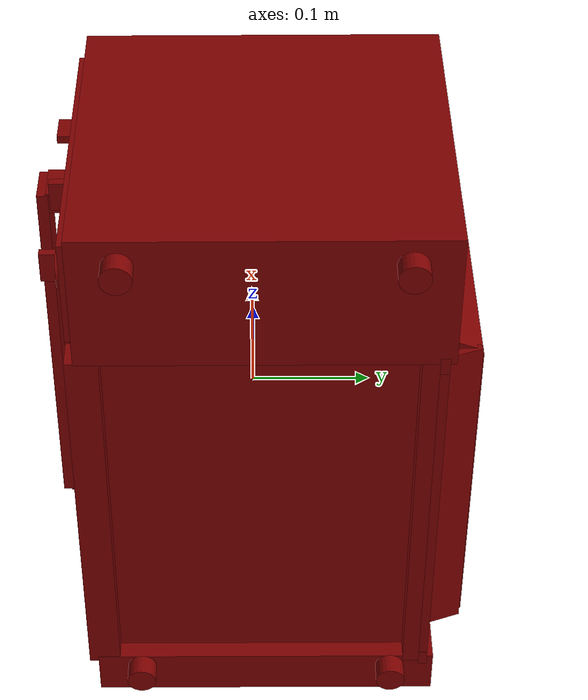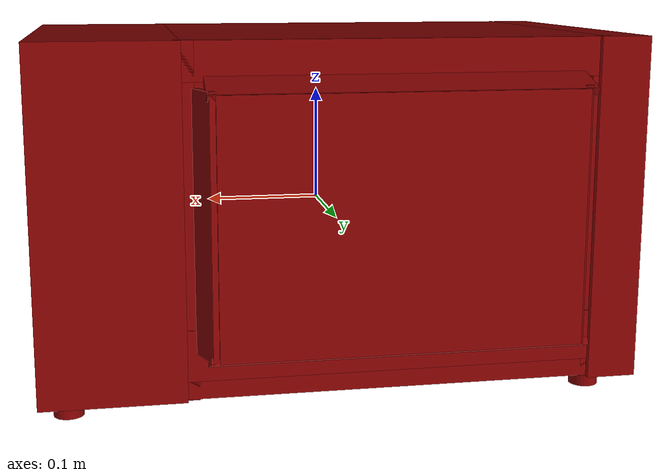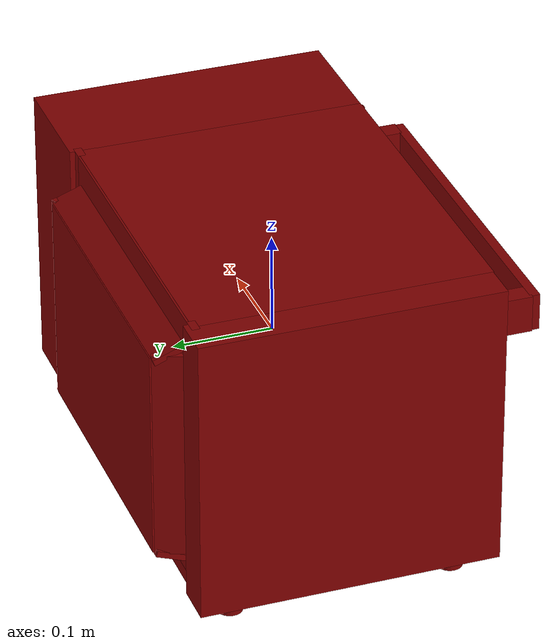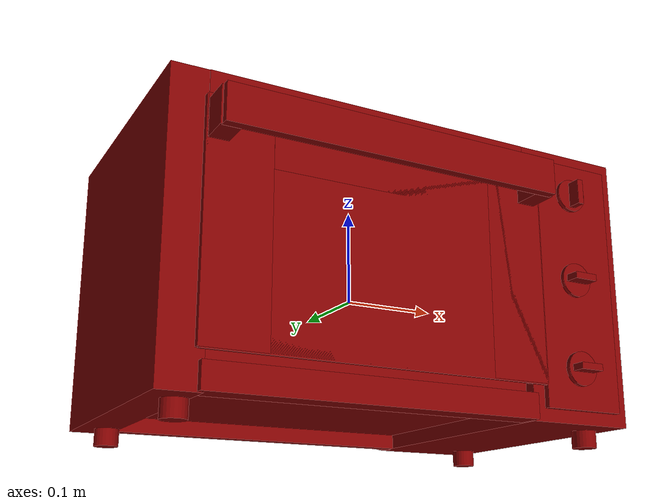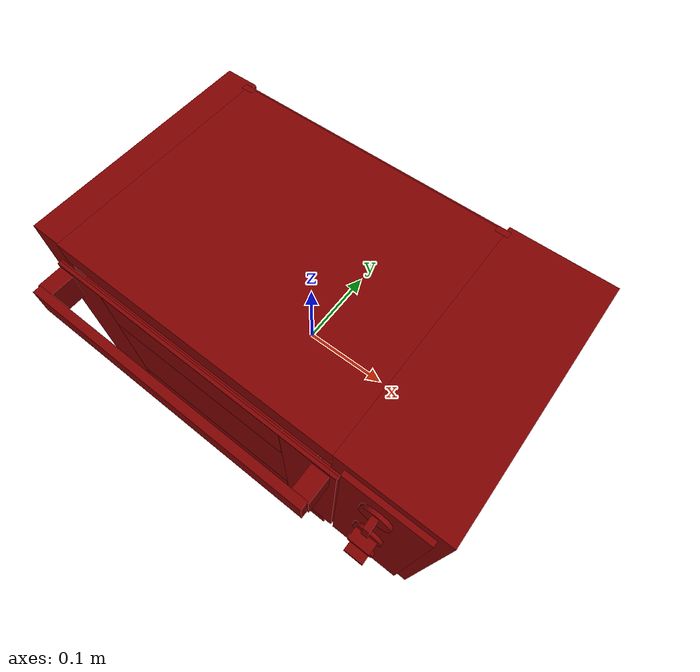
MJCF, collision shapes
<?xml version='1.0' encoding='UTF-8'?>
<mujoco model="model">
  <option timestep="0.002" gravity="0.0 0.0 -9.81"/>
  <compiler angle="radian"/>
  <asset>
    <mesh file="visuals/door.obj" name="door_vis"/>
    <mesh file="visuals/knob_function.obj" name="knob_function_vis"/>
    <mesh file="visuals/knob_temp.obj" name="knob_temp_vis"/>
    <mesh file="visuals/knob_time.obj" name="knob_time_vis"/>
    <mesh file="visuals/Body001.obj" name="Body001_vis"/>
    <mesh file="visuals/tray0.obj" name="tray0_vis"/>
    <mesh file="visuals/window.obj" name="window_vis"/>
    <texture file="visuals/T_BC001.png" name="Body001_material" type="2d"/>
    <material name="Body001_material" rgba="1 1 1 1.0" texture="Body001_material" shininess="0.4472135901451111" specular="0.5"/>
    <texture file="visuals/T_BC001.png" name="door_material" type="2d"/>
    <material name="door_material" rgba="1 1 1 1.0" texture="door_material" shininess="0.4472135901451111" specular="0.5"/>
    <texture file="visuals/T_BC001.png" name="window_material" type="2d"/>
    <material name="window_material" rgba="1 1 1 0.800000011920929" texture="window_material" shininess="0.4472135901451111" specular="0.3103448502657381"/>
    <texture file="visuals/T_BC001.png" name="knob_function_material" type="2d"/>
    <material name="knob_function_material" rgba="1 1 1 1.0" texture="knob_function_material" shininess="0.4472135901451111" specular="0.3103448502657381"/>
    <texture file="visuals/T_BC001.png" name="knob_temp_material" type="2d"/>
    <material name="knob_temp_material" rgba="1 1 1 1.0" texture="knob_temp_material" shininess="0.4472135901451111" specular="0.3103448502657381"/>
    <texture file="visuals/T_BC001.png" name="knob_time_material" type="2d"/>
    <material name="knob_time_material" rgba="1 1 1 1.0" texture="knob_time_material" shininess="0.4472135901451111" specular="0.3103448502657381"/>
    <texture file="visuals/T_BC001.png" name="tray0_material" type="2d"/>
    <material name="tray0_material" rgba="1 1 1 1.0" texture="tray0_material" shininess="0.4472135901451111" specular="5"/>
  </asset>
  <default>
    <default class="visual">
      <geom conaffinity="0" contype="0" group="1" type="mesh"/>
    </default>
    <default class="collision">
      <geom group="0" rgba="0.5 0 0 0.5"/>
    </default>
    <default class="spawn">
      <geom group="0" rgba="1 1 1 0.5" contype="0" conaffinity="0"/>
      <site group="0" rgba="1 1 1 0.5"/>
    </default>
    <default class="region">
      <geom group="1" conaffinity="0" contype="0" rgba="0 1 0 0"/>
    </default>
  </default>
  <worldbody>
    <body>
      <body name="object">
        <geom mesh="Body001_vis" type="mesh" solimp="0.998 0.998 0.001" solref="0.001 1" friction="0.95 0.3 0.1" class="visual" material="Body001_material"/>
        <geom class="collision" type="box" pos="-0.2291344553232193 0.01026891078799963 0.009272522293031216" size="0.02095920220017433 0.14795072376728058 0.1446588784456253" quat="1.0 0.0 0.0 0.0"/>
        <geom class="collision" type="box" pos="0.19071297347545624 0.009946533478796482 0.009272522293031216" size="0.059381961822509766 0.14827591180801392 0.144661545753479" quat="1.0 0.0 0.0 0.0"/>
        <geom class="collision" type="box" pos="-0.04090869426727295 0.1805724799633026 0.009302927181124687" size="0.1486060470342636 0.0035272836685180664 0.10513849556446075" quat="1.0 0.0 0.0 0.0"/>
        <geom class="collision" type="box" pos="-0.04090869426727295 0.006192016415297985 0.13888375461101532" size="0.17270509898662567 0.14469483494758606 0.015050338581204414" quat="1.0 0.0 0.0 0.0"/>
        <geom class="collision" type="box" pos="-0.04090869426727295 0.013177791610360146 -0.09805627912282944" size="0.17270509898662567 0.14053411781787872 0.021454239264130592" quat="1.0 0.0 0.0 0.0"/>
        <geom class="collision" type="box" pos="-0.1965753734111786 0.02429427206516266 -0.005125303752720356" size="0.013140195049345493 0.0921148881316185 0.00394660048186779" quat="1.0 0.0 0.0 0.0"/>
        <geom class="collision" type="box" pos="0.12132398039102554 0.02429427206516266 -0.005125303752720356" size="0.013140195049345493 0.09211491793394089 0.00394660048186779" quat="1.0 0.0 0.0 0.0"/>
        <geom class="collision" type="box" pos="-0.04090869426727295 -0.13197186589241028 -0.12177293747663498" size="0.17270301282405853 0.01345696859061718 0.012961048632860184" quat="1.0 0.0 0.0 0.0"/>
        <geom class="collision" type="box" pos="-0.04090869426727295 0.138325497508049 -0.12217225879430771" size="0.1727031022310257 0.006978643126785755 0.013360378332436085" quat="1.0 0.0 0.0 0.0"/>
        <geom class="collision" type="cylinder" pos="-0.22020751237869263 -0.09926024079322815 -0.14432883262634277" size="0.012536659836769104 0.00904157292097807" quat="1.0 0.0 0.0 0.0"/>
        <geom class="collision" type="cylinder" pos="0.22734780609607697 -0.09926024079322815 -0.14432883262634277" size="0.012536659836769104 0.00904157292097807" quat="1.0 0.0 0.0 0.0"/>
        <geom class="collision" type="cylinder" pos="-0.22020751237869263 0.11993732303380966 -0.14432883262634277" size="0.012536659836769104 0.00904157292097807" quat="1.0 0.0 0.0 0.0"/>
        <geom class="collision" type="cylinder" pos="0.22734780609607697 0.11993732303380966 -0.14432883262634277" size="0.012536659836769104 0.00904157292097807" quat="1.0 0.0 0.0 0.0"/>
        <geom class="collision" type="box" pos="-0.04090869426727295 0.14905086159706116 0.13775868713855743" size="0.17270508408546448 0.003952898550778627 0.015989204868674278" quat="1.0 0.0 0.0 0.0"/>
        <geom class="collision" type="box" pos="0.12904879450798035 0.14905086159706116 0.009272513911128044" size="0.007620235905051231 0.0039529139176011086 0.14466336369514465" quat="1.0 0.0 0.0 0.0"/>
        <geom class="collision" type="box" pos="-0.21083781123161316 0.14905086159706116 0.009272513911128044" size="0.007620235905051231 0.003952911589294672 0.1446632742881775" quat="1.0 0.0 0.0 0.0"/>
        <geom class="collision" type="box" pos="-0.04090869426727295 0.14905086159706116 -0.11863546818494797" size="0.17270508408546448 0.003952898550778627 0.015989217907190323" quat="1.0 0.0 0.0 0.0"/>
        <geom class="collision" type="box" pos="-0.04090869426727295 0.16681279242038727 0.11776731163263321" size="0.0030830767937004566 0.15537603199481964 0.016231082379817963" quat="0.5802908539772034 0.4040576219558716 -0.4040575325489044 0.5802908539772034"/>
        <geom class="collision" type="box" pos="-0.04090869426727295 0.16681279242038727 -0.09957920014858246" size="0.0030830763280391693 0.15537603199481964 0.016231084242463112" quat="0.4040578603744507 0.5802903771400452 0.5802912712097168 -0.4040572941303253"/>
        <geom class="collision" type="box" pos="0.11545715481042862 0.16681280732154846 0.010433156043291092" size="0.003083077259361744 0.10665188729763031 0.016231082379817963" quat="0.6960394382476807 0.6960394382476807 0.12461594492197037 0.12461571395397186"/>
        <geom class="collision" type="box" pos="-0.1940702199935913 0.16681280732154846 0.010433156043291092" size="0.0030830767937004566 0.10665188729763031 0.016231082379817963" quat="0.12461601197719574 -0.12461569160223007 -0.696039617061615 0.6960392594337463"/>
        <geom class="collision" type="box" pos="0.19071297347545624 -0.14158494770526886 0.009272522293031216" size="0.04586330056190491 0.003015402937307954 0.13143034279346466" quat="1.0 0.0 0.0 0.0"/>
        <body name="door">
          <joint axis="1.0 0.0 0.0" pos="-0.03727241978049278 -0.1472281962633133 -0.10600089281797409" limited="true" name="door_joint" range="0.0 1.5707963267948966" type="hinge" damping="1" frictionloss="1" armature=".01" stiffness="0.5" springref="-0.5"/>
          <geom mesh="door_vis" type="mesh" solimp="0.998 0.998 0.001" solref="0.001 1" friction="0.95 0.3 0.1" class="visual" material="door_material"/>
          <geom class="collision" type="box" pos="0.11126821488142014 -0.14404182136058807 0.013492166064679623" size="0.032216452062129974 0.003178437938913703 0.1126779168844223" quat="1.0 0.0 0.0 0.0"/>
          <geom class="collision" type="box" pos="-0.18622033298015594 -0.14404182136058807 0.013492166064679623" size="0.032216429710388184 0.0031784360762685537 0.11267784237861633" quat="1.0 0.0 0.0 0.0"/>
          <geom class="collision" type="box" pos="-0.03778919577598572 -0.14404183626174927 0.09673970937728882" size="0.11613684147596359 0.0031784414313733578 0.029244396835565567" quat="1.0 0.0 0.0 0.0"/>
          <geom class="collision" type="box" pos="-0.03778919577598572 -0.14404182136058807 -0.07531752437353134" size="0.11613491177558899 0.003178398124873638 0.023475026711821556" quat="1.0 0.0 0.0 0.0"/>
          <geom class="collision" type="box" pos="-0.03685232996940613 -0.13841983675956726 0.1081024631857872" size="0.15269309282302856 0.004333487246185541 0.008172891102731228" quat="1.0 0.0 0.0 0.0"/>
          <geom class="collision" type="box" pos="-0.03685232996940613 -0.13841983675956726 -0.08775503933429718" size="0.15269316732883453 0.004333490040153265 0.008172893896698952" quat="1.0 0.0 0.0 0.0"/>
          <geom class="collision" type="box" pos="0.11054257303476334 -0.13841982185840607 0.013447928242385387" size="0.0076876236125826836 0.00433350121602416 0.09639520943164825" quat="1.0 0.0 0.0 0.0"/>
          <geom class="collision" type="box" pos="-0.18417665362358093 -0.13841982185840607 0.013447928242385387" size="0.00768762594088912 0.00433350121602416 0.09639523178339005" quat="1.0 0.0 0.0 0.0"/>
          <geom class="collision" type="box" pos="-0.20669542253017426 -0.1605810821056366 0.10311038792133331" size="0.009793737903237343 0.016309766098856926 0.018314117565751076" quat="1.0 0.0 0.0 0.0"/>
          <geom class="collision" type="box" pos="0.12642592191696167 -0.1605810821056366 0.10311038792133331" size="0.009793737903237343 0.016309775412082672 0.018314123153686523" quat="1.0 0.0 0.0 0.0"/>
          <geom class="collision" type="box" pos="-0.04021008685231209 -0.17981499433517456 0.10311038792133331" size="0.17447064816951752 0.004895841237157583 0.018314188346266747" quat="1.0 0.0 0.0 0.0" name="door_handle_main"/>
          <geom class="collision" type="box" pos="-0.037272483110427856 -0.14528080821037292 0.01347365602850914" size="0.17978793382644653 0.001939430832862854 0.11377586424350739" quat="1.0 0.0 0.0 0.0" name="door_main"/>
          <body name="window">
            <geom mesh="window_vis" type="mesh" solimp="0.998 0.998 0.001" solref="0.001 1" friction="0.95 0.3 0.1" class="visual" material="window_material"/>
            <geom class="collision" type="box" pos="-0.037272483110427856 -0.14383536577224731 0.007802197244018316" size="0.17978814244270325 0.0004939892096444964 0.09210919588804245" quat="1.0 0.0 0.0 0.0"/>
          </body>
        </body>
        <body name="knob_function">
          <joint axis="0.0 1.0 0.0" pos="0.1866963505744934 -0.15307722985744476 -0.08074874430894852" limited="true" name="knob_function_joint" range="0.0 3.141592653589793" type="hinge" damping="0.05" frictionloss="0.75" armature="1"/>
          <geom mesh="knob_function_vis" type="mesh" solimp="0.998 0.998 0.001" solref="0.001 1" friction="0.95 0.3 0.1" class="visual" material="knob_function_material"/>
          <geom class="collision" type="box" pos="0.18694429099559784 -0.15628582239151 -0.08064987510442734" size="0.013152562081813812 0.007229186128824949 0.0034416562411934137" quat="1.0 0.0 0.0 0.0" name="knob_function_main" friction="100 0.5 0.01"/>
          <geom class="collision" type="cylinder" pos="0.1866956502199173 -0.14755435287952423 -0.08060120791196823" size="0.017623387277126312 0.0025220136158168316" quat="0.7071068286895752 0.7071067690849304 0.0 0.0" friction="100 0.5 0.01"/>
        </body>
        <body name="knob_temp">
          <joint axis="0.0 1.0 0.0" pos="0.1866956502199173 -0.15307722985744476 0.012671598233282566" limited="true" name="knob_temp_joint" range="0.0 3.5779249665883754" type="hinge" damping="0.05" frictionloss="0.75" armature="1"/>
          <geom mesh="knob_temp_vis" type="mesh" solimp="0.998 0.998 0.001" solref="0.001 1" friction="0.95 0.3 0.1" class="visual" material="knob_temp_material"/>
          <geom class="collision" type="box" pos="0.18694429099559784 -0.15628582239151 0.012789278291165829" size="0.013152558356523514 0.007229182869195938 0.0034416550770401955" quat="1.0 0.0 0.0 0.0" name="knob_temp_main" friction="100 0.5 0.01"/>
          <geom class="collision" type="cylinder" pos="0.1866956502199173 -0.14721491932868958 0.012373557314276695" size="0.01771843060851097 0.002143062185496092" quat="0.7071068286895752 0.7071067690849304 0.0 0.0" friction="100 0.5 0.01"/>
        </body>
        <body name="knob_time">
          <joint axis="0.0 1.0 0.0" pos="0.18682336807250977 -0.15307722985744476 0.10531587153673172" limited="true" name="knob_time_joint" range="0.0 3.9269908169872414" type="hinge" damping="0.05" armature="1" frictionloss="0.75"/>
          <geom mesh="knob_time_vis" type="mesh" solimp="0.998 0.998 0.001" solref="0.001 1" friction="0.95 0.3 0.1" class="visual" material="knob_time_material"/>
          <geom class="collision" type="box" pos="0.18681710958480835 -0.15628582239151 0.10506778210401535" size="0.0034416576381772757 0.007229180540889502 0.013152554631233215" quat="1.0 0.0 0.0 0.0" name="knob_time_main" friction="100 0.5 0.01"/>
          <geom class="collision" type="cylinder" pos="0.18653854727745056 -0.14764255285263062 0.10521092265844345" size="0.01723494380712509 0.002150133950635791" quat="0.7071068286895752 0.7071067690849304 0.0 0.0" friction="100 0.5 0.01"/>
        </body>
        <body name="tray0">
          <geom class="region" name="reg_tray0" type="box" pos="-0.037006527185440063 0.025413352996110916 0.049810742028057575" size="0.12426805293560028 0.07766381821036339 0.06276106166094542"/>
          <joint axis="0.0 -1.0 0.0" pos="-0.0380043089389801 0.026126787066459656 -0.006667387206107378" limited="true" name="tray0_joint" range="0.0 0.16" type="slide" damping="1" frictionloss="1" armature=".01" stiffness="0.05"/>
          <geom mesh="tray0_vis" type="mesh" solimp="0.998 0.998 0.001" solref="0.001 1" friction="0.95 0.3 0.1" class="visual" material="tray0_material"/>
          <geom class="collision" type="box" pos="-0.0380043089389801 0.026126787066459656 -0.014925883151590824" size="0.1349877119064331 0.08491915464401245 0.0009717044304125011" quat="1.0 0.0 0.0 0.0"/>
          <geom class="collision" type="box" pos="0.10025935620069504 0.026126788929104805 -0.006485310848802328" size="0.00943481083959341 0.08491962403059006 0.0015453967498615384" quat="1.1490061524455086e-07 -0.5372996926307678 2.7209024366925405e-08 0.8433914184570312"/>
          <geom class="collision" type="box" pos="-0.17637842893600464 0.026126788929104805 -0.006536820903420448" size="0.009434811770915985 0.08491962403059006 0.0014235127018764615" quat="0.8433914184570312 1.0130188243806515e-08 0.537299633026123 -8.809221441197224e-08"/>
          <geom class="collision" type="box" pos="-0.03800429031252861 0.11230186372995377 -0.006727760192006826" size="0.009101909585297108 0.13755109906196594 0.0009717045468278229" quat="0.541674792766571 0.4545198082923889 0.45451921224594116 -0.5416756272315979"/>
          <geom class="collision" type="box" pos="-0.0380043163895607 -0.06004829704761505 -0.006727760192006826" size="0.009101909585297108 0.13755109906196594 0.000971704488620162" quat="0.5416746139526367 -0.4545201063156128 0.45451900362968445 0.5416756868362427"/>
        </body>
        <geom class="region" name="reg_main" type="box" pos="-7.450580596923828e-09 0.018439926207065582 0.0" size="0.25109384751319885 0.16666014289855957 0.1549340764284134"/>
      </body>
    </body>
  </worldbody>
  <actuator>
    <motor name="door_joint_actuator" joint="door_joint" gear="50"/>
    <motor name="knob_function_joint_actuator" joint="knob_function_joint" gear="50"/>
    <motor name="knob_temp_joint_actuator" joint="knob_temp_joint" gear="50"/>
    <motor name="knob_time_joint_actuator" joint="knob_time_joint" gear="50"/>
    <motor name="tray0_joint_actuator" joint="tray0_joint" gear="50"/>
  </actuator>
</mujoco>
